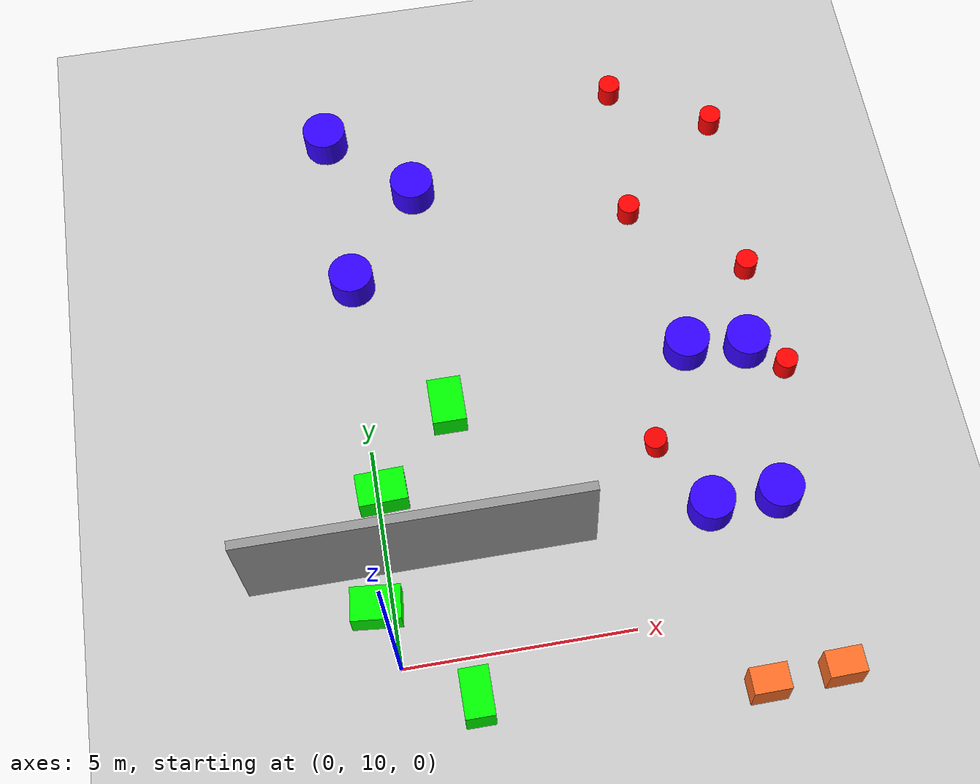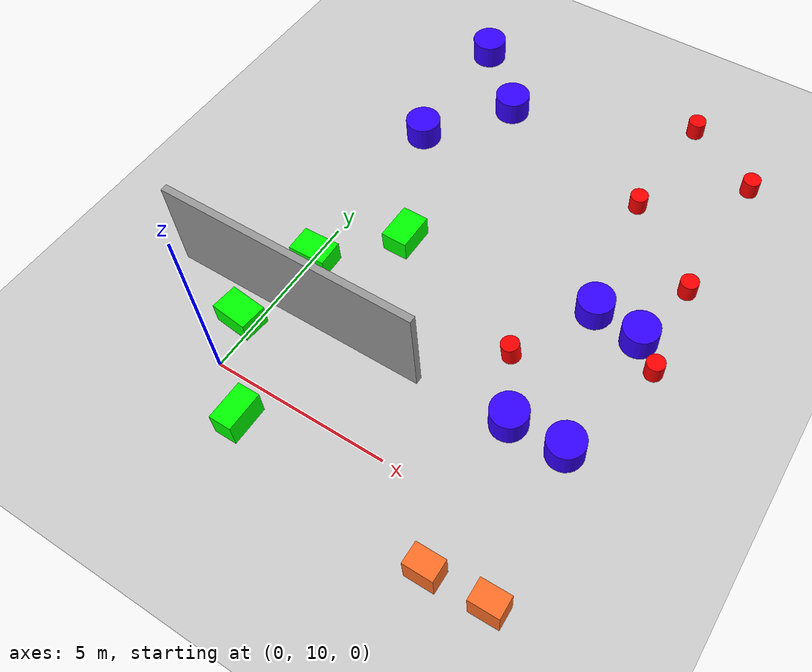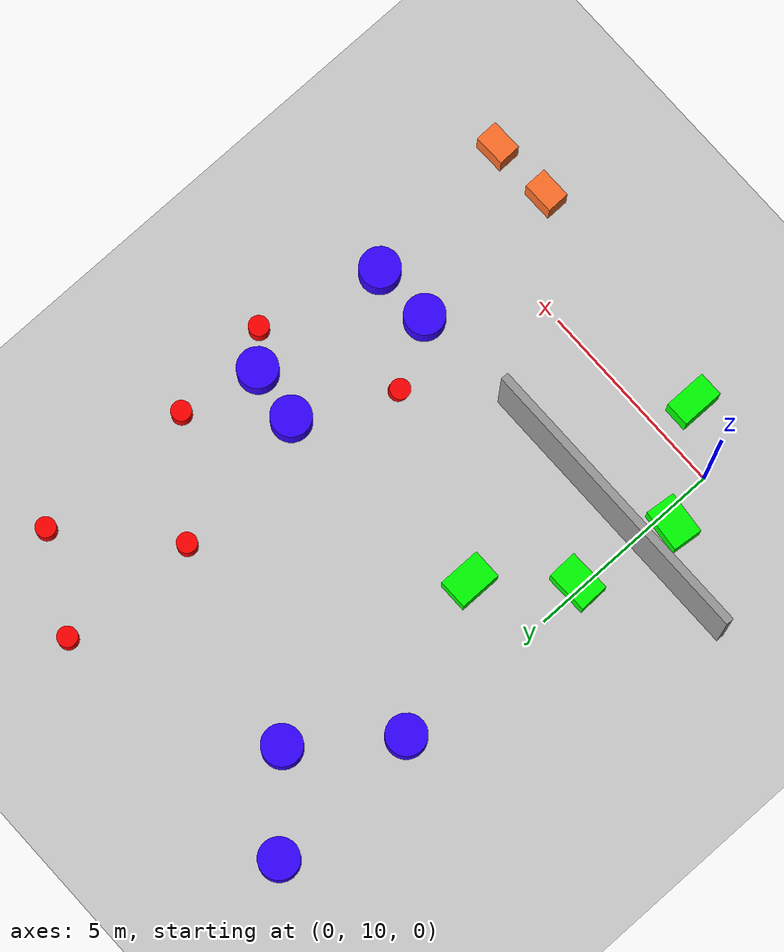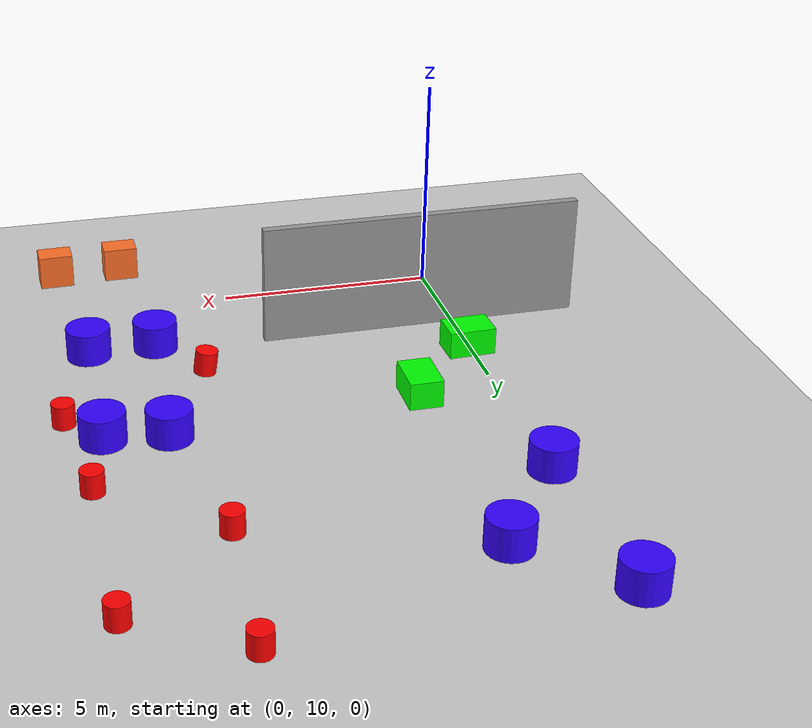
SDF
<sdf version="1.7">
 <world name="default">
  <model name="ground_plane">
   <static>1</static>
   <link name="link">
    <collision name="collision">
     <geometry><plane><normal>0 0 1</normal><size>100 100</size></plane></geometry>
     <surface>
      <contact><collide_bitmask>65535</collide_bitmask></contact>
      <friction><ode><mu>100</mu><mu2>50</mu2></ode></friction>
     </surface>
    </collision>
    <visual name="visual">
     <cast_shadows>0</cast_shadows>
     <geometry><plane><normal>0 0 1</normal><size>100 100</size></plane></geometry>
     <material>
      <script><uri>file://media/materials/scripts/gazebo.material</uri><name>Gazebo/Grey</name></script>
     </material>
    </visual>
   </link>
  </model>
  <model name="grey_wall">
   <static>1</static>
   <link name="link">
    <pose>0 0 1.4 0 -0 0</pose>
    <collision name="collision"><geometry><box><size>7.5 0.2 2.8</size></box></geometry></collision>
    <visual name="visual">
     <cast_shadows>0</cast_shadows>
     <geometry><box><size>7.5 0.2 2.8</size></box></geometry>
     <material>
      <script>
       <uri>model://grey_wall/materials/scripts</uri>
       <uri>model://grey_wall/materials/textures</uri>
       <name>vrc/grey_wall</name>
      </script>
     </material>
    </visual>
   </link>
   <pose>0.775832 12.2424 0 0 -0 0</pose>
  </model>
  <model name="cylinder_3">
   <link name="link">
    <inertial>
     <mass>0.89</mass>
     <inertia>
      <ixx>0.129792</ixx>
      <ixy>0</ixy>
      <ixz>0</ixz>
      <iyy>0.129792</iyy>
      <iyz>0</iyz>
      <izz>0.11125</izz>
     </inertia>
    </inertial>
    <visual name="visual">
     <geometry><cylinder><radius>0.25</radius><length>0.54</length></cylinder></geometry>
     <material>
      <script><name>Gazebo/Grey</name><uri>file://media/materials/scripts/gazebo.material</uri></script>
      <shader type="pixel"><normal_map>__default__</normal_map></shader>
      <ambient>1 0 0 1</ambient>
      <diffuse>0.7 0.7 0.7 1</diffuse>
      <specular>0.01 0.01 0.01 1</specular>
      <emissive>0 0 0 1</emissive>
     </material>
    </visual>
    <collision name="collision">
     <geometry><cylinder><radius>0.5</radius><length>1</length></cylinder></geometry>
     <surface>
      <friction>
       <ode><mu>1</mu><mu2>1</mu2><fdir1>0 0 0</fdir1><slip1>0</slip1><slip2>0</slip2></ode>
       <torsional>
        <coefficient>1</coefficient>
        <patch_radius>0</patch_radius>
        <surface_radius>0</surface_radius>
        <use_patch_radius>1</use_patch_radius>
        <ode><slip>0</slip></ode>
       </torsional>
      </friction>
      <bounce><restitution_coefficient>0</restitution_coefficient><threshold>1e+06</threshold></bounce>
      <contact>
       <collide_without_contact>0</collide_without_contact>
       <collide_without_contact_bitmask>1</collide_without_contact_bitmask>
       <collide_bitmask>1</collide_bitmask>
       <ode>
        <soft_cfm>0</soft_cfm>
        <soft_erp>0.2</soft_erp>
        <kp>1e+13</kp>
        <kd>1</kd>
        <max_vel>0.01</max_vel>
        <min_depth>0</min_depth>
       </ode>
       <bullet>
        <split_impulse>1</split_impulse>
        <split_impulse_penetration_threshold>-0.01</split_impulse_penetration_threshold>
        <soft_cfm>0</soft_cfm>
        <soft_erp>0.2</soft_erp>
        <kp>1e+13</kp>
        <kd>1</kd>
       </bullet>
      </contact>
     </surface>
    </collision>
   </link>
   <static>0</static>
   <pose>9.16539 22.1081 0.5 0 -0 0</pose>
  </model>
  <model name="cylinder_3_clone">
   <link name="link">
    <inertial>
     <mass>0.89</mass>
     <inertia>
      <ixx>0.129792</ixx>
      <ixy>0</ixy>
      <ixz>0</ixz>
      <iyy>0.129792</iyy>
      <iyz>0</iyz>
      <izz>0.11125</izz>
     </inertia>
    </inertial>
    <visual name="visual">
     <geometry><cylinder><radius>0.25</radius><length>0.54</length></cylinder></geometry>
     <material>
      <script><name>Gazebo/Grey</name><uri>file://media/materials/scripts/gazebo.material</uri></script>
      <shader type="pixel"><normal_map>__default__</normal_map></shader>
      <ambient>1 0 0 1</ambient>
      <diffuse>0.7 0.7 0.7 1</diffuse>
      <specular>0.01 0.01 0.01 1</specular>
      <emissive>0 0 0 1</emissive>
     </material>
    </visual>
    <collision name="collision">
     <geometry><cylinder><radius>0.5</radius><length>1</length></cylinder></geometry>
     <surface>
      <friction>
       <ode><mu>1</mu><mu2>1</mu2><fdir1>0 0 0</fdir1><slip1>0</slip1><slip2>0</slip2></ode>
       <torsional>
        <coefficient>1</coefficient>
        <patch_radius>0</patch_radius>
        <surface_radius>0</surface_radius>
        <use_patch_radius>1</use_patch_radius>
        <ode><slip>0</slip></ode>
       </torsional>
      </friction>
      <bounce><restitution_coefficient>0</restitution_coefficient><threshold>1e+06</threshold></bounce>
      <contact>
       <collide_without_contact>0</collide_without_contact>
       <collide_without_contact_bitmask>1</collide_without_contact_bitmask>
       <collide_bitmask>1</collide_bitmask>
       <ode>
        <soft_cfm>0</soft_cfm>
        <soft_erp>0.2</soft_erp>
        <kp>1e+13</kp>
        <kd>1</kd>
        <max_vel>0.01</max_vel>
        <min_depth>0</min_depth>
       </ode>
       <bullet>
        <split_impulse>1</split_impulse>
        <split_impulse_penetration_threshold>-0.01</split_impulse_penetration_threshold>
        <soft_cfm>0</soft_cfm>
        <soft_erp>0.2</soft_erp>
        <kp>1e+13</kp>
        <kd>1</kd>
       </bullet>
      </contact>
     </surface>
    </collision>
   </link>
   <static>0</static>
   <pose>9.12999 18.0062 0.499991 -2e-06 1e-06 -3e-06</pose>
  </model>
  <model name="green_box">
   <link name="link">
    <inertial>
     <mass>1</mass>
     <inertia>
      <ixx>0.166667</ixx>
      <ixy>0</ixy>
      <ixz>0</ixz>
      <iyy>0.166667</iyy>
      <iyz>0</iyz>
      <izz>0.166667</izz>
     </inertia>
    </inertial>
    <visual name="visual">
     <geometry><box><size>0.75 1.07 0.63</size></box></geometry>
     <material>
      <script><name>Gazebo/Grey</name><uri>file://media/materials/scripts/gazebo.material</uri></script>
      <shader type="pixel"><normal_map>__default__</normal_map></shader>
      <ambient>0 1 0 1</ambient>
      <diffuse>0 1 0 1</diffuse>
      <specular>0.01 0.01 0.01 1</specular>
      <emissive>0 0 0 1</emissive>
     </material>
    </visual>
    <collision name="collision">
     <geometry><box><size>0.84 1 0.78</size></box></geometry>
     <surface>
      <friction>
       <ode><mu>1</mu><mu2>1</mu2><fdir1>0 0 0</fdir1><slip1>0</slip1><slip2>0</slip2></ode>
       <torsional>
        <coefficient>1</coefficient>
        <patch_radius>0</patch_radius>
        <surface_radius>0</surface_radius>
        <use_patch_radius>1</use_patch_radius>
        <ode><slip>0</slip></ode>
       </torsional>
      </friction>
      <bounce><restitution_coefficient>0</restitution_coefficient><threshold>1e+06</threshold></bounce>
      <contact>
       <collide_without_contact>0</collide_without_contact>
       <collide_without_contact_bitmask>1</collide_without_contact_bitmask>
       <collide_bitmask>1</collide_bitmask>
       <ode>
        <soft_cfm>0</soft_cfm>
        <soft_erp>0.2</soft_erp>
        <kp>1e+13</kp>
        <kd>1</kd>
        <max_vel>0.01</max_vel>
        <min_depth>0</min_depth>
       </ode>
       <bullet>
        <split_impulse>1</split_impulse>
        <split_impulse_penetration_threshold>-0.01</split_impulse_penetration_threshold>
        <soft_cfm>0</soft_cfm>
        <soft_erp>0.2</soft_erp>
        <kp>1e+13</kp>
        <kd>1</kd>
       </bullet>
      </contact>
     </surface>
    </collision>
   </link>
   <static>0</static>
   <pose>1.80574 15.6778 0.39 0 -0 0</pose>
  </model>
  <model name="green_box_clone">
   <link name="link">
    <inertial>
     <mass>1</mass>
     <inertia>
      <ixx>0.166667</ixx>
      <ixy>0</ixy>
      <ixz>0</ixz>
      <iyy>0.166667</iyy>
      <iyz>0</iyz>
      <izz>0.166667</izz>
     </inertia>
    </inertial>
    <visual name="visual">
     <geometry><box><size>0.75 1.07 0.63</size></box></geometry>
     <material>
      <script><name>Gazebo/Grey</name><uri>file://media/materials/scripts/gazebo.material</uri></script>
      <shader type="pixel"><normal_map>__default__</normal_map></shader>
      <ambient>0 1 0 1</ambient>
      <diffuse>0 1 0 1</diffuse>
      <specular>0.01 0.01 0.01 1</specular>
      <emissive>0 0 0 1</emissive>
     </material>
    </visual>
    <collision name="collision">
     <geometry><box><size>0.84 1 0.78</size></box></geometry>
     <surface>
      <friction>
       <ode><mu>1</mu><mu2>1</mu2><fdir1>0 0 0</fdir1><slip1>0</slip1><slip2>0</slip2></ode>
       <torsional>
        <coefficient>1</coefficient>
        <patch_radius>0</patch_radius>
        <surface_radius>0</surface_radius>
        <use_patch_radius>1</use_patch_radius>
        <ode><slip>0</slip></ode>
       </torsional>
      </friction>
      <bounce><restitution_coefficient>0</restitution_coefficient><threshold>1e+06</threshold></bounce>
      <contact>
       <collide_without_contact>0</collide_without_contact>
       <collide_without_contact_bitmask>1</collide_without_contact_bitmask>
       <collide_bitmask>1</collide_bitmask>
       <ode>
        <soft_cfm>0</soft_cfm>
        <soft_erp>0.2</soft_erp>
        <kp>1e+13</kp>
        <kd>1</kd>
        <max_vel>0.01</max_vel>
        <min_depth>0</min_depth>
       </ode>
       <bullet>
        <split_impulse>1</split_impulse>
        <split_impulse_penetration_threshold>-0.01</split_impulse_penetration_threshold>
        <soft_cfm>0</soft_cfm>
        <soft_erp>0.2</soft_erp>
        <kp>1e+13</kp>
        <kd>1</kd>
       </bullet>
      </contact>
     </surface>
    </collision>
   </link>
   <static>0</static>
   <pose>0.120821 13.8684 0.39 0 -0 -1.54087</pose>
  </model>
  <model name="blue_cylinder_2">
   <link name="link">
    <inertial>
     <mass>1</mass>
     <inertia><ixx>0.145833</ixx><ixy>0</ixy><ixz>0</ixz><iyy>0.145833</iyy><iyz>0</iyz><izz>0.125</izz></inertia>
    </inertial>
    <visual name="visual">
     <geometry><cylinder><radius>0.5</radius><length>0.74</length></cylinder></geometry>
     <material>
      <script><name>Gazebo/Grey</name><uri>file://media/materials/scripts/gazebo.material</uri></script>
      <shader type="pixel"><normal_map>__default__</normal_map></shader>
      <ambient>0.2 0 1 1</ambient>
      <diffuse>0.2 0 1 1</diffuse>
      <specular>0.2 0 1 1</specular>
      <emissive>0 0 0 1</emissive>
     </material>
    </visual>
    <collision name="collision">
     <geometry><cylinder><radius>0.5</radius><length>1</length></cylinder></geometry>
     <surface>
      <friction>
       <ode><mu>1</mu><mu2>1</mu2><fdir1>0 0 0</fdir1><slip1>0</slip1><slip2>0</slip2></ode>
       <torsional>
        <coefficient>1</coefficient>
        <patch_radius>0</patch_radius>
        <surface_radius>0</surface_radius>
        <use_patch_radius>1</use_patch_radius>
        <ode><slip>0</slip></ode>
       </torsional>
      </friction>
      <bounce><restitution_coefficient>0</restitution_coefficient><threshold>1e+06</threshold></bounce>
      <contact>
       <collide_without_contact>0</collide_without_contact>
       <collide_without_contact_bitmask>1</collide_without_contact_bitmask>
       <collide_bitmask>1</collide_bitmask>
       <ode>
        <soft_cfm>0</soft_cfm>
        <soft_erp>0.2</soft_erp>
        <kp>1e+13</kp>
        <kd>1</kd>
        <max_vel>0.01</max_vel>
        <min_depth>0</min_depth>
       </ode>
       <bullet>
        <split_impulse>1</split_impulse>
        <split_impulse_penetration_threshold>-0.01</split_impulse_penetration_threshold>
        <soft_cfm>0</soft_cfm>
        <soft_erp>0.2</soft_erp>
        <kp>1e+13</kp>
        <kd>1</kd>
       </bullet>
      </contact>
     </surface>
    </collision>
   </link>
   <static>0</static>
   <pose>1.81017 21.4131 0.5 0 -0 0.196656</pose>
  </model>
  <model name="blue_cylinder_2_clone_0">
   <link name="link">
    <inertial>
     <mass>1</mass>
     <inertia><ixx>0.145833</ixx><ixy>0</ixy><ixz>0</ixz><iyy>0.145833</iyy><iyz>0</iyz><izz>0.125</izz></inertia>
    </inertial>
    <visual name="visual">
     <geometry><cylinder><radius>0.5</radius><length>0.74</length></cylinder></geometry>
     <material>
      <script><name>Gazebo/Grey</name><uri>file://media/materials/scripts/gazebo.material</uri></script>
      <shader type="pixel"><normal_map>__default__</normal_map></shader>
      <ambient>0.2 0 1 1</ambient>
      <diffuse>0.2 0 1 1</diffuse>
      <specular>0.2 0 1 1</specular>
      <emissive>0 0 0 1</emissive>
     </material>
    </visual>
    <collision name="collision">
     <geometry><cylinder><radius>0.5</radius><length>1</length></cylinder></geometry>
     <surface>
      <friction>
       <ode><mu>1</mu><mu2>1</mu2><fdir1>0 0 0</fdir1><slip1>0</slip1><slip2>0</slip2></ode>
       <torsional>
        <coefficient>1</coefficient>
        <patch_radius>0</patch_radius>
        <surface_radius>0</surface_radius>
        <use_patch_radius>1</use_patch_radius>
        <ode><slip>0</slip></ode>
       </torsional>
      </friction>
      <bounce><restitution_coefficient>0</restitution_coefficient><threshold>1e+06</threshold></bounce>
      <contact>
       <collide_without_contact>0</collide_without_contact>
       <collide_without_contact_bitmask>1</collide_without_contact_bitmask>
       <collide_bitmask>1</collide_bitmask>
       <ode>
        <soft_cfm>0</soft_cfm>
        <soft_erp>0.2</soft_erp>
        <kp>1e+13</kp>
        <kd>1</kd>
        <max_vel>0.01</max_vel>
        <min_depth>0</min_depth>
       </ode>
       <bullet>
        <split_impulse>1</split_impulse>
        <split_impulse_penetration_threshold>-0.01</split_impulse_penetration_threshold>
        <soft_cfm>0</soft_cfm>
        <soft_erp>0.2</soft_erp>
        <kp>1e+13</kp>
        <kd>1</kd>
       </bullet>
      </contact>
     </surface>
    </collision>
   </link>
   <static>0</static>
   <pose>-0.065185 23.1697 0.499992 -2e-06 0 0.196656</pose>
  </model>
  <model name="blue_cylinder_2_clone_1">
   <link name="link">
    <inertial>
     <mass>1</mass>
     <inertia><ixx>0.145833</ixx><ixy>0</ixy><ixz>0</ixz><iyy>0.145833</iyy><iyz>0</iyz><izz>0.125</izz></inertia>
    </inertial>
    <visual name="visual">
     <geometry><cylinder><radius>0.5</radius><length>0.74</length></cylinder></geometry>
     <material>
      <script><name>Gazebo/Grey</name><uri>file://media/materials/scripts/gazebo.material</uri></script>
      <shader type="pixel"><normal_map>__default__</normal_map></shader>
      <ambient>0.2 0 1 1</ambient>
      <diffuse>0.2 0 1 1</diffuse>
      <specular>0.2 0 1 1</specular>
      <emissive>0 0 0 1</emissive>
     </material>
    </visual>
    <collision name="collision">
     <geometry><cylinder><radius>0.5</radius><length>1</length></cylinder></geometry>
     <surface>
      <friction>
       <ode><mu>1</mu><mu2>1</mu2><fdir1>0 0 0</fdir1><slip1>0</slip1><slip2>0</slip2></ode>
       <torsional>
        <coefficient>1</coefficient>
        <patch_radius>0</patch_radius>
        <surface_radius>0</surface_radius>
        <use_patch_radius>1</use_patch_radius>
        <ode><slip>0</slip></ode>
       </torsional>
      </friction>
      <bounce><restitution_coefficient>0</restitution_coefficient><threshold>1e+06</threshold></bounce>
      <contact>
       <collide_without_contact>0</collide_without_contact>
       <collide_without_contact_bitmask>1</collide_without_contact_bitmask>
       <collide_bitmask>1</collide_bitmask>
       <ode>
        <soft_cfm>0</soft_cfm>
        <soft_erp>0.2</soft_erp>
        <kp>1e+13</kp>
        <kd>1</kd>
        <max_vel>0.01</max_vel>
        <min_depth>0</min_depth>
       </ode>
       <bullet>
        <split_impulse>1</split_impulse>
        <split_impulse_penetration_threshold>-0.01</split_impulse_penetration_threshold>
        <soft_cfm>0</soft_cfm>
        <soft_erp>0.2</soft_erp>
        <kp>1e+13</kp>
        <kd>1</kd>
       </bullet>
      </contact>
     </surface>
    </collision>
   </link>
   <static>0</static>
   <pose>0.104178 19.1527 0.499992 -2e-06 0 0.196656</pose>
  </model>
  <model name="green_box_0">
   <link name="link">
    <inertial>
     <mass>1</mass>
     <inertia>
      <ixx>0.166667</ixx>
      <ixy>0</ixy>
      <ixz>0</ixz>
      <iyy>0.166667</iyy>
      <iyz>0</iyz>
      <izz>0.166667</izz>
     </inertia>
    </inertial>
    <visual name="visual">
     <geometry><box><size>0.75 1.07 0.63</size></box></geometry>
     <material>
      <script><name>Gazebo/Grey</name><uri>file://media/materials/scripts/gazebo.material</uri></script>
      <shader type="pixel"><normal_map>__default__</normal_map></shader>
      <ambient>0 1 0 1</ambient>
      <diffuse>0 1 0 1</diffuse>
      <specular>0.01 0.01 0.01 1</specular>
      <emissive>0 0 0 1</emissive>
     </material>
    </visual>
    <collision name="collision">
     <geometry><box><size>0.84 1 0.78</size></box></geometry>
     <surface>
      <friction>
       <ode><mu>1</mu><mu2>1</mu2><fdir1>0 0 0</fdir1><slip1>0</slip1><slip2>0</slip2></ode>
       <torsional>
        <coefficient>1</coefficient>
        <patch_radius>0</patch_radius>
        <surface_radius>0</surface_radius>
        <use_patch_radius>1</use_patch_radius>
        <ode><slip>0</slip></ode>
       </torsional>
      </friction>
      <bounce><restitution_coefficient>0</restitution_coefficient><threshold>1e+06</threshold></bounce>
      <contact>
       <collide_without_contact>0</collide_without_contact>
       <collide_without_contact_bitmask>1</collide_without_contact_bitmask>
       <collide_bitmask>1</collide_bitmask>
       <ode>
        <soft_cfm>0</soft_cfm>
        <soft_erp>0.2</soft_erp>
        <kp>1e+13</kp>
        <kd>1</kd>
        <max_vel>0.01</max_vel>
        <min_depth>0</min_depth>
       </ode>
       <bullet>
        <split_impulse>1</split_impulse>
        <split_impulse_penetration_threshold>-0.01</split_impulse_penetration_threshold>
        <soft_cfm>0</soft_cfm>
        <soft_erp>0.2</soft_erp>
        <kp>1e+13</kp>
        <kd>1</kd>
       </bullet>
      </contact>
     </surface>
    </collision>
   </link>
   <static>0</static>
   <pose>1.46818 9.05066 0.42 3.14159 1.57079 3.14159</pose>
  </model>
  <model name="green_box_1_clone">
   <link name="link">
    <inertial>
     <mass>1</mass>
     <inertia>
      <ixx>0.166667</ixx>
      <ixy>0</ixy>
      <ixz>0</ixz>
      <iyy>0.166667</iyy>
      <iyz>0</iyz>
      <izz>0.166667</izz>
     </inertia>
    </inertial>
    <visual name="visual">
     <geometry><box><size>0.75 1.07 0.63</size></box></geometry>
     <material>
      <script><name>Gazebo/Grey</name><uri>file://media/materials/scripts/gazebo.material</uri></script>
      <shader type="pixel"><normal_map>__default__</normal_map></shader>
      <ambient>0 1 0 1</ambient>
      <diffuse>0 1 0 1</diffuse>
      <specular>0.01 0.01 0.01 1</specular>
      <emissive>0 0 0 1</emissive>
     </material>
    </visual>
    <collision name="collision">
     <geometry><box><size>0.84 1 0.78</size></box></geometry>
     <surface>
      <friction>
       <ode><mu>1</mu><mu2>1</mu2><fdir1>0 0 0</fdir1><slip1>0</slip1><slip2>0</slip2></ode>
       <torsional>
        <coefficient>1</coefficient>
        <patch_radius>0</patch_radius>
        <surface_radius>0</surface_radius>
        <use_patch_radius>1</use_patch_radius>
        <ode><slip>0</slip></ode>
       </torsional>
      </friction>
      <bounce><restitution_coefficient>0</restitution_coefficient><threshold>1e+06</threshold></bounce>
      <contact>
       <collide_without_contact>0</collide_without_contact>
       <collide_without_contact_bitmask>1</collide_without_contact_bitmask>
       <collide_bitmask>1</collide_bitmask>
       <ode>
        <soft_cfm>0</soft_cfm>
        <soft_erp>0.2</soft_erp>
        <kp>1e+13</kp>
        <kd>1</kd>
        <max_vel>0.01</max_vel>
        <min_depth>0</min_depth>
       </ode>
       <bullet>
        <split_impulse>1</split_impulse>
        <split_impulse_penetration_threshold>-0.01</split_impulse_penetration_threshold>
        <soft_cfm>0</soft_cfm>
        <soft_erp>0.2</soft_erp>
        <kp>1e+13</kp>
        <kd>1</kd>
       </bullet>
      </contact>
     </surface>
    </collision>
   </link>
   <static>0</static>
   <pose>-0.320791 11.3061 0.39 0 0 -1.67159</pose>
  </model>
  <model name="cylinder_3_clone_0">
   <link name="link">
    <inertial>
     <mass>0.89</mass>
     <inertia>
      <ixx>0.129792</ixx>
      <ixy>0</ixy>
      <ixz>0</ixz>
      <iyy>0.129792</iyy>
      <iyz>0</iyz>
      <izz>0.11125</izz>
     </inertia>
    </inertial>
    <visual name="visual">
     <geometry><cylinder><radius>0.25</radius><length>0.54</length></cylinder></geometry>
     <material>
      <script><name>Gazebo/Grey</name><uri>file://media/materials/scripts/gazebo.material</uri></script>
      <shader type="pixel"><normal_map>__default__</normal_map></shader>
      <ambient>1 0 0 1</ambient>
      <diffuse>0.7 0.7 0.7 1</diffuse>
      <specular>0.01 0.01 0.01 1</specular>
      <emissive>0 0 0 1</emissive>
     </material>
    </visual>
    <collision name="collision">
     <geometry><cylinder><radius>0.5</radius><length>1</length></cylinder></geometry>
     <surface>
      <friction>
       <ode><mu>1</mu><mu2>1</mu2><fdir1>0 0 0</fdir1><slip1>0</slip1><slip2>0</slip2></ode>
       <torsional>
        <coefficient>1</coefficient>
        <patch_radius>0</patch_radius>
        <surface_radius>0</surface_radius>
        <use_patch_radius>1</use_patch_radius>
        <ode><slip>0</slip></ode>
       </torsional>
      </friction>
      <bounce><restitution_coefficient>0</restitution_coefficient><threshold>1e+06</threshold></bounce>
      <contact>
       <collide_without_contact>0</collide_without_contact>
       <collide_without_contact_bitmask>1</collide_without_contact_bitmask>
       <collide_bitmask>1</collide_bitmask>
       <ode>
        <soft_cfm>0</soft_cfm>
        <soft_erp>0.2</soft_erp>
        <kp>1e+13</kp>
        <kd>1</kd>
        <max_vel>0.01</max_vel>
        <min_depth>0</min_depth>
       </ode>
       <bullet>
        <split_impulse>1</split_impulse>
        <split_impulse_penetration_threshold>-0.01</split_impulse_penetration_threshold>
        <soft_cfm>0</soft_cfm>
        <soft_erp>0.2</soft_erp>
        <kp>1e+13</kp>
        <kd>1</kd>
       </bullet>
      </contact>
     </surface>
    </collision>
   </link>
   <static>0</static>
   <pose>6.93231 23.4003 0.499996 -1e-06 -0 -0</pose>
  </model>
  <model name="cylinder_3_clone_clone">
   <link name="link">
    <inertial>
     <mass>0.89</mass>
     <inertia>
      <ixx>0.129792</ixx>
      <ixy>0</ixy>
      <ixz>0</ixz>
      <iyy>0.129792</iyy>
      <iyz>0</iyz>
      <izz>0.11125</izz>
     </inertia>
    </inertial>
    <visual name="visual">
     <geometry><cylinder><radius>0.25</radius><length>0.54</length></cylinder></geometry>
     <material>
      <script><name>Gazebo/Grey</name><uri>file://media/materials/scripts/gazebo.material</uri></script>
      <shader type="pixel"><normal_map>__default__</normal_map></shader>
      <ambient>1 0 0 1</ambient>
      <diffuse>0.7 0.7 0.7 1</diffuse>
      <specular>0.01 0.01 0.01 1</specular>
      <emissive>0 0 0 1</emissive>
     </material>
    </visual>
    <collision name="collision">
     <geometry><cylinder><radius>0.5</radius><length>1</length></cylinder></geometry>
     <surface>
      <friction>
       <ode><mu>1</mu><mu2>1</mu2><fdir1>0 0 0</fdir1><slip1>0</slip1><slip2>0</slip2></ode>
       <torsional>
        <coefficient>1</coefficient>
        <patch_radius>0</patch_radius>
        <surface_radius>0</surface_radius>
        <use_patch_radius>1</use_patch_radius>
        <ode><slip>0</slip></ode>
       </torsional>
      </friction>
      <bounce><restitution_coefficient>0</restitution_coefficient><threshold>1e+06</threshold></bounce>
      <contact>
       <collide_without_contact>0</collide_without_contact>
       <collide_without_contact_bitmask>1</collide_without_contact_bitmask>
       <collide_bitmask>1</collide_bitmask>
       <ode>
        <soft_cfm>0</soft_cfm>
        <soft_erp>0.2</soft_erp>
        <kp>1e+13</kp>
        <kd>1</kd>
        <max_vel>0.01</max_vel>
        <min_depth>0</min_depth>
       </ode>
       <bullet>
        <split_impulse>1</split_impulse>
        <split_impulse_penetration_threshold>-0.01</split_impulse_penetration_threshold>
        <soft_cfm>0</soft_cfm>
        <soft_erp>0.2</soft_erp>
        <kp>1e+13</kp>
        <kd>1</kd>
       </bullet>
      </contact>
     </surface>
    </collision>
   </link>
   <static>0</static>
   <pose>6.74078 19.9391 0.499997 2e-06 -0 0</pose>
  </model>
  <model name="blue_cylinder_2_clone_2">
   <link name="link">
    <inertial>
     <mass>1</mass>
     <inertia><ixx>0.145833</ixx><ixy>0</ixy><ixz>0</ixz><iyy>0.145833</iyy><iyz>0</iyz><izz>0.125</izz></inertia>
    </inertial>
    <visual name="visual">
     <geometry><cylinder><radius>0.5</radius><length>0.74</length></cylinder></geometry>
     <material>
      <script><name>Gazebo/Grey</name><uri>file://media/materials/scripts/gazebo.material</uri></script>
      <shader type="pixel"><normal_map>__default__</normal_map></shader>
      <ambient>0.2 0 1 1</ambient>
      <diffuse>0.2 0 1 1</diffuse>
      <specular>0.2 0 1 1</specular>
      <emissive>0 0 0 1</emissive>
     </material>
    </visual>
    <collision name="collision">
     <geometry><cylinder><radius>0.5</radius><length>1</length></cylinder></geometry>
     <surface>
      <friction>
       <ode><mu>1</mu><mu2>1</mu2><fdir1>0 0 0</fdir1><slip1>0</slip1><slip2>0</slip2></ode>
       <torsional>
        <coefficient>1</coefficient>
        <patch_radius>0</patch_radius>
        <surface_radius>0</surface_radius>
        <use_patch_radius>1</use_patch_radius>
        <ode><slip>0</slip></ode>
       </torsional>
      </friction>
      <bounce><restitution_coefficient>0</restitution_coefficient><threshold>1e+06</threshold></bounce>
      <contact>
       <collide_without_contact>0</collide_without_contact>
       <collide_without_contact_bitmask>1</collide_without_contact_bitmask>
       <collide_bitmask>1</collide_bitmask>
       <ode>
        <soft_cfm>0</soft_cfm>
        <soft_erp>0.2</soft_erp>
        <kp>1e+13</kp>
        <kd>1</kd>
        <max_vel>0.01</max_vel>
        <min_depth>0</min_depth>
       </ode>
       <bullet>
        <split_impulse>1</split_impulse>
        <split_impulse_penetration_threshold>-0.01</split_impulse_penetration_threshold>
        <soft_cfm>0</soft_cfm>
        <soft_erp>0.2</soft_erp>
        <kp>1e+13</kp>
        <kd>1</kd>
       </bullet>
      </contact>
     </surface>
    </collision>
   </link>
   <static>0</static>
   <pose>7.06554 12.3367 0.5 0 -0 0.196656</pose>
  </model>
  <model name="blue_cylinder_2_clone_2_clone">
   <link name="link">
    <inertial>
     <mass>1</mass>
     <inertia><ixx>0.145833</ixx><ixy>0</ixy><ixz>0</ixz><iyy>0.145833</iyy><iyz>0</iyz><izz>0.125</izz></inertia>
    </inertial>
    <visual name="visual">
     <geometry><cylinder><radius>0.5</radius><length>0.74</length></cylinder></geometry>
     <material>
      <script><name>Gazebo/Grey</name><uri>file://media/materials/scripts/gazebo.material</uri></script>
      <shader type="pixel"><normal_map>__default__</normal_map></shader>
      <ambient>0.2 0 1 1</ambient>
      <diffuse>0.2 0 1 1</diffuse>
      <specular>0.2 0 1 1</specular>
      <emissive>0 0 0 1</emissive>
     </material>
    </visual>
    <collision name="collision">
     <geometry><cylinder><radius>0.5</radius><length>1</length></cylinder></geometry>
     <surface>
      <friction>
       <ode><mu>1</mu><mu2>1</mu2><fdir1>0 0 0</fdir1><slip1>0</slip1><slip2>0</slip2></ode>
       <torsional>
        <coefficient>1</coefficient>
        <patch_radius>0</patch_radius>
        <surface_radius>0</surface_radius>
        <use_patch_radius>1</use_patch_radius>
        <ode><slip>0</slip></ode>
       </torsional>
      </friction>
      <bounce><restitution_coefficient>0</restitution_coefficient><threshold>1e+06</threshold></bounce>
      <contact>
       <collide_without_contact>0</collide_without_contact>
       <collide_without_contact_bitmask>1</collide_without_contact_bitmask>
       <collide_bitmask>1</collide_bitmask>
       <ode>
        <soft_cfm>0</soft_cfm>
        <soft_erp>0.2</soft_erp>
        <kp>1e+13</kp>
        <kd>1</kd>
        <max_vel>0.01</max_vel>
        <min_depth>0</min_depth>
       </ode>
       <bullet>
        <split_impulse>1</split_impulse>
        <split_impulse_penetration_threshold>-0.01</split_impulse_penetration_threshold>
        <soft_cfm>0</soft_cfm>
        <soft_erp>0.2</soft_erp>
        <kp>1e+13</kp>
        <kd>1</kd>
       </bullet>
      </contact>
     </surface>
    </collision>
   </link>
   <static>0</static>
   <pose>8.57997 12.3684 0.503979 0.007836 -0.001563 0.196911</pose>
  </model>
  <model name="blue_cylinder_2_clone_2_clone_0">
   <link name="link">
    <inertial>
     <mass>1</mass>
     <inertia><ixx>0.145833</ixx><ixy>0</ixy><ixz>0</ixz><iyy>0.145833</iyy><iyz>0</iyz><izz>0.125</izz></inertia>
    </inertial>
    <visual name="visual">
     <geometry><cylinder><radius>0.5</radius><length>0.74</length></cylinder></geometry>
     <material>
      <script><name>Gazebo/Grey</name><uri>file://media/materials/scripts/gazebo.material</uri></script>
      <shader type="pixel"><normal_map>__default__</normal_map></shader>
      <ambient>0.2 0 1 1</ambient>
      <diffuse>0.2 0 1 1</diffuse>
      <specular>0.2 0 1 1</specular>
      <emissive>0 0 0 1</emissive>
     </material>
    </visual>
    <collision name="collision">
     <geometry><cylinder><radius>0.5</radius><length>1</length></cylinder></geometry>
     <surface>
      <friction>
       <ode><mu>1</mu><mu2>1</mu2><fdir1>0 0 0</fdir1><slip1>0</slip1><slip2>0</slip2></ode>
       <torsional>
        <coefficient>1</coefficient>
        <patch_radius>0</patch_radius>
        <surface_radius>0</surface_radius>
        <use_patch_radius>1</use_patch_radius>
        <ode><slip>0</slip></ode>
       </torsional>
      </friction>
      <bounce><restitution_coefficient>0</restitution_coefficient><threshold>1e+06</threshold></bounce>
      <contact>
       <collide_without_contact>0</collide_without_contact>
       <collide_without_contact_bitmask>1</collide_without_contact_bitmask>
       <collide_bitmask>1</collide_bitmask>
       <ode>
        <soft_cfm>0</soft_cfm>
        <soft_erp>0.2</soft_erp>
        <kp>1e+13</kp>
        <kd>1</kd>
        <max_vel>0.01</max_vel>
        <min_depth>0</min_depth>
       </ode>
       <bullet>
        <split_impulse>1</split_impulse>
        <split_impulse_penetration_threshold>-0.01</split_impulse_penetration_threshold>
        <soft_cfm>0</soft_cfm>
        <soft_erp>0.2</soft_erp>
        <kp>1e+13</kp>
        <kd>1</kd>
       </bullet>
      </contact>
     </surface>
    </collision>
   </link>
   <static>0</static>
   <pose>8.70071 16.0376 0.499998 2e-06 -0 0.197798</pose>
  </model>
  <model name="blue_cylinder_2_clone_2_clone_0_clone">
   <link name="link">
    <inertial>
     <mass>1</mass>
     <inertia><ixx>0.145833</ixx><ixy>0</ixy><ixz>0</ixz><iyy>0.145833</iyy><iyz>0</iyz><izz>0.125</izz></inertia>
    </inertial>
    <visual name="visual">
     <geometry><cylinder><radius>0.5</radius><length>0.74</length></cylinder></geometry>
     <material>
      <script><name>Gazebo/Grey</name><uri>file://media/materials/scripts/gazebo.material</uri></script>
      <shader type="pixel"><normal_map>__default__</normal_map></shader>
      <ambient>0.2 0 1 1</ambient>
      <diffuse>0.2 0 1 1</diffuse>
      <specular>0.2 0 1 1</specular>
      <emissive>0 0 0 1</emissive>
     </material>
    </visual>
    <collision name="collision">
     <geometry><cylinder><radius>0.5</radius><length>1</length></cylinder></geometry>
     <surface>
      <friction>
       <ode><mu>1</mu><mu2>1</mu2><fdir1>0 0 0</fdir1><slip1>0</slip1><slip2>0</slip2></ode>
       <torsional>
        <coefficient>1</coefficient>
        <patch_radius>0</patch_radius>
        <surface_radius>0</surface_radius>
        <use_patch_radius>1</use_patch_radius>
        <ode><slip>0</slip></ode>
       </torsional>
      </friction>
      <bounce><restitution_coefficient>0</restitution_coefficient><threshold>1e+06</threshold></bounce>
      <contact>
       <collide_without_contact>0</collide_without_contact>
       <collide_without_contact_bitmask>1</collide_without_contact_bitmask>
       <collide_bitmask>1</collide_bitmask>
       <ode>
        <soft_cfm>0</soft_cfm>
        <soft_erp>0.2</soft_erp>
        <kp>1e+13</kp>
        <kd>1</kd>
        <max_vel>0.01</max_vel>
        <min_depth>0</min_depth>
       </ode>
       <bullet>
        <split_impulse>1</split_impulse>
        <split_impulse_penetration_threshold>-0.01</split_impulse_penetration_threshold>
        <soft_cfm>0</soft_cfm>
        <soft_erp>0.2</soft_erp>
        <kp>1e+13</kp>
        <kd>1</kd>
       </bullet>
      </contact>
     </surface>
    </collision>
   </link>
   <static>0</static>
   <pose>7.34038 16.2174 0.5 0 -0 0.196656</pose>
  </model>
  <model name="cylinder_3_clone_clone_0">
   <link name="link">
    <inertial>
     <mass>0.89</mass>
     <inertia>
      <ixx>0.129792</ixx>
      <ixy>0</ixy>
      <ixz>0</ixz>
      <iyy>0.129792</iyy>
      <iyz>0</iyz>
      <izz>0.11125</izz>
     </inertia>
    </inertial>
    <visual name="visual">
     <geometry><cylinder><radius>0.25</radius><length>0.54</length></cylinder></geometry>
     <material>
      <script><name>Gazebo/Grey</name><uri>file://media/materials/scripts/gazebo.material</uri></script>
      <shader type="pixel"><normal_map>__default__</normal_map></shader>
      <ambient>1 0 0 1</ambient>
      <diffuse>0.7 0.7 0.7 1</diffuse>
      <specular>0.01 0.01 0.01 1</specular>
      <emissive>0 0 0 1</emissive>
     </material>
    </visual>
    <collision name="collision">
     <geometry><cylinder><radius>0.5</radius><length>1</length></cylinder></geometry>
     <surface>
      <friction>
       <ode><mu>1</mu><mu2>1</mu2><fdir1>0 0 0</fdir1><slip1>0</slip1><slip2>0</slip2></ode>
       <torsional>
        <coefficient>1</coefficient>
        <patch_radius>0</patch_radius>
        <surface_radius>0</surface_radius>
        <use_patch_radius>1</use_patch_radius>
        <ode><slip>0</slip></ode>
       </torsional>
      </friction>
      <bounce><restitution_coefficient>0</restitution_coefficient><threshold>1e+06</threshold></bounce>
      <contact>
       <collide_without_contact>0</collide_without_contact>
       <collide_without_contact_bitmask>1</collide_without_contact_bitmask>
       <collide_bitmask>1</collide_bitmask>
       <ode>
        <soft_cfm>0</soft_cfm>
        <soft_erp>0.2</soft_erp>
        <kp>1e+13</kp>
        <kd>1</kd>
        <max_vel>0.01</max_vel>
        <min_depth>0</min_depth>
       </ode>
       <bullet>
        <split_impulse>1</split_impulse>
        <split_impulse_penetration_threshold>-0.01</split_impulse_penetration_threshold>
        <soft_cfm>0</soft_cfm>
        <soft_erp>0.2</soft_erp>
        <kp>1e+13</kp>
        <kd>1</kd>
       </bullet>
      </contact>
     </surface>
    </collision>
   </link>
   <static>0</static>
   <pose>9.43232 15.3558 0.499999 -0 -1e-06 1.26581</pose>
  </model>
  <model name="cylinder_3_clone_clone_1">
   <link name="link">
    <inertial>
     <mass>0.89</mass>
     <inertia>
      <ixx>0.129792</ixx>
      <ixy>0</ixy>
      <ixz>0</ixz>
      <iyy>0.129792</iyy>
      <iyz>0</iyz>
      <izz>0.11125</izz>
     </inertia>
    </inertial>
    <visual name="visual">
     <geometry><cylinder><radius>0.25</radius><length>0.54</length></cylinder></geometry>
     <material>
      <script><name>Gazebo/Grey</name><uri>file://media/materials/scripts/gazebo.material</uri></script>
      <shader type="pixel"><normal_map>__default__</normal_map></shader>
      <ambient>1 0 0 1</ambient>
      <diffuse>0.7 0.7 0.7 1</diffuse>
      <specular>0.01 0.01 0.01 1</specular>
      <emissive>0 0 0 1</emissive>
     </material>
    </visual>
    <collision name="collision">
     <geometry><cylinder><radius>0.5</radius><length>1</length></cylinder></geometry>
     <surface>
      <friction>
       <ode><mu>1</mu><mu2>1</mu2><fdir1>0 0 0</fdir1><slip1>0</slip1><slip2>0</slip2></ode>
       <torsional>
        <coefficient>1</coefficient>
        <patch_radius>0</patch_radius>
        <surface_radius>0</surface_radius>
        <use_patch_radius>1</use_patch_radius>
        <ode><slip>0</slip></ode>
       </torsional>
      </friction>
      <bounce><restitution_coefficient>0</restitution_coefficient><threshold>1e+06</threshold></bounce>
      <contact>
       <collide_without_contact>0</collide_without_contact>
       <collide_without_contact_bitmask>1</collide_without_contact_bitmask>
       <collide_bitmask>1</collide_bitmask>
       <ode>
        <soft_cfm>0</soft_cfm>
        <soft_erp>0.2</soft_erp>
        <kp>1e+13</kp>
        <kd>1</kd>
        <max_vel>0.01</max_vel>
        <min_depth>0</min_depth>
       </ode>
       <bullet>
        <split_impulse>1</split_impulse>
        <split_impulse_penetration_threshold>-0.01</split_impulse_penetration_threshold>
        <soft_cfm>0</soft_cfm>
        <soft_erp>0.2</soft_erp>
        <kp>1e+13</kp>
        <kd>1</kd>
       </bullet>
      </contact>
     </surface>
    </collision>
   </link>
   <static>0</static>
   <pose>6.17602 13.9206 0.558074 -0.009481 -0.123806 0.005564</pose>
  </model>
  <model name="orange_box">
   <link name="link">
    <inertial>
     <mass>1</mass>
     <inertia>
      <ixx>0.166667</ixx>
      <ixy>0</ixy>
      <ixz>0</ixz>
      <iyy>0.166667</iyy>
      <iyz>0</iyz>
      <izz>0.166667</izz>
     </inertia>
    </inertial>
    <visual name="visual">
     <geometry><box><size>0.57 0.8 0.8</size></box></geometry>
     <material>
      <script><name>Gazebo/Grey</name><uri>file://media/materials/scripts/gazebo.material</uri></script>
      <shader type="pixel"><normal_map>__default__</normal_map></shader>
      <ambient>0.698 0.369 0.176 1</ambient>
      <diffuse>1 0.435 0.153 1</diffuse>
      <specular>0.698 0.396 0.133 1</specular>
      <emissive>0.698 0.427 0.114 1</emissive>
     </material>
    </visual>
    <collision name="collision">
     <geometry><box><size>1 1 1</size></box></geometry>
     <surface>
      <friction>
       <ode><mu>1</mu><mu2>1</mu2><fdir1>0 0 0</fdir1><slip1>0</slip1><slip2>0</slip2></ode>
       <torsional>
        <coefficient>1</coefficient>
        <patch_radius>0</patch_radius>
        <surface_radius>0</surface_radius>
        <use_patch_radius>1</use_patch_radius>
        <ode><slip>0</slip></ode>
       </torsional>
      </friction>
      <bounce><restitution_coefficient>0</restitution_coefficient><threshold>1e+06</threshold></bounce>
      <contact>
       <collide_without_contact>0</collide_without_contact>
       <collide_without_contact_bitmask>1</collide_without_contact_bitmask>
       <collide_bitmask>1</collide_bitmask>
       <ode>
        <soft_cfm>0</soft_cfm>
        <soft_erp>0.2</soft_erp>
        <kp>1e+13</kp>
        <kd>1</kd>
        <max_vel>0.01</max_vel>
        <min_depth>0</min_depth>
       </ode>
       <bullet>
        <split_impulse>1</split_impulse>
        <split_impulse_penetration_threshold>-0.01</split_impulse_penetration_threshold>
        <soft_cfm>0</soft_cfm>
        <soft_erp>0.2</soft_erp>
        <kp>1e+13</kp>
        <kd>1</kd>
       </bullet>
      </contact>
     </surface>
    </collision>
   </link>
   <static>0</static>
   <pose>8.95078 8.35957 0.5 0 0 -1.55059</pose>
  </model>
  <model name="orange_box_0">
   <link name="link">
    <inertial>
     <mass>1</mass>
     <inertia>
      <ixx>0.166667</ixx>
      <ixy>0</ixy>
      <ixz>0</ixz>
      <iyy>0.166667</iyy>
      <iyz>0</iyz>
      <izz>0.166667</izz>
     </inertia>
    </inertial>
    <visual name="visual">
     <geometry><box><size>0.57 0.8 0.8</size></box></geometry>
     <material>
      <script><name>Gazebo/Grey</name><uri>file://media/materials/scripts/gazebo.material</uri></script>
      <shader type="pixel"><normal_map>__default__</normal_map></shader>
      <ambient>0.698 0.369 0.176 1</ambient>
      <diffuse>1 0.435 0.153 1</diffuse>
      <specular>0.698 0.396 0.133 1</specular>
      <emissive>0.698 0.427 0.114 1</emissive>
     </material>
    </visual>
    <collision name="collision">
     <geometry><box><size>1 1 1</size></box></geometry>
     <surface>
      <friction>
       <ode><mu>1</mu><mu2>1</mu2><fdir1>0 0 0</fdir1><slip1>0</slip1><slip2>0</slip2></ode>
       <torsional>
        <coefficient>1</coefficient>
        <patch_radius>0</patch_radius>
        <surface_radius>0</surface_radius>
        <use_patch_radius>1</use_patch_radius>
        <ode><slip>0</slip></ode>
       </torsional>
      </friction>
      <bounce><restitution_coefficient>0</restitution_coefficient><threshold>1e+06</threshold></bounce>
      <contact>
       <collide_without_contact>0</collide_without_contact>
       <collide_without_contact_bitmask>1</collide_without_contact_bitmask>
       <collide_bitmask>1</collide_bitmask>
       <ode>
        <soft_cfm>0</soft_cfm>
        <soft_erp>0.2</soft_erp>
        <kp>1e+13</kp>
        <kd>1</kd>
        <max_vel>0.01</max_vel>
        <min_depth>0</min_depth>
       </ode>
       <bullet>
        <split_impulse>1</split_impulse>
        <split_impulse_penetration_threshold>-0.01</split_impulse_penetration_threshold>
        <soft_cfm>0</soft_cfm>
        <soft_erp>0.2</soft_erp>
        <kp>1e+13</kp>
        <kd>1</kd>
       </bullet>
      </contact>
     </surface>
    </collision>
   </link>
   <static>0</static>
   <pose>7.36084 8.28019 0.5 0 -0 1.58025</pose>
  </model>
 </world>
</sdf>
